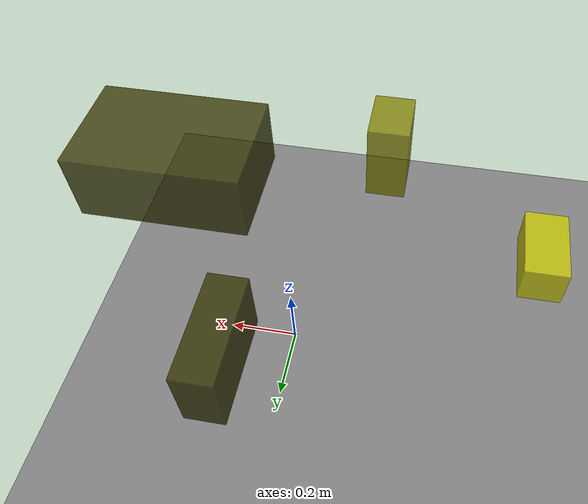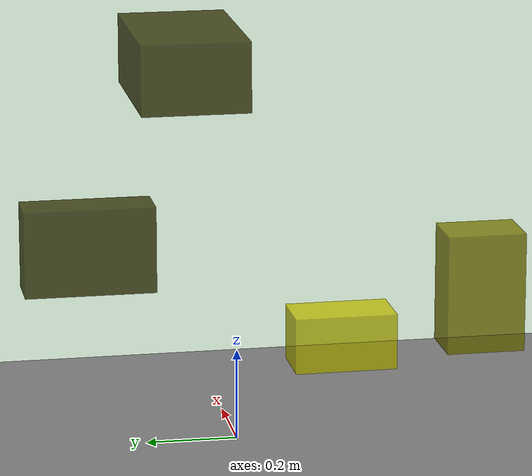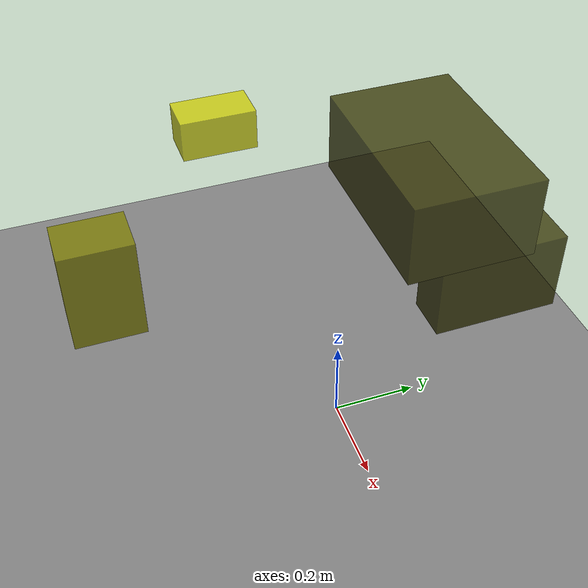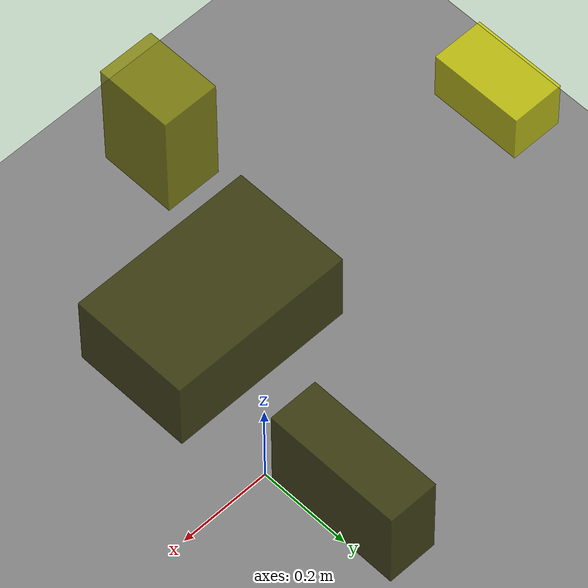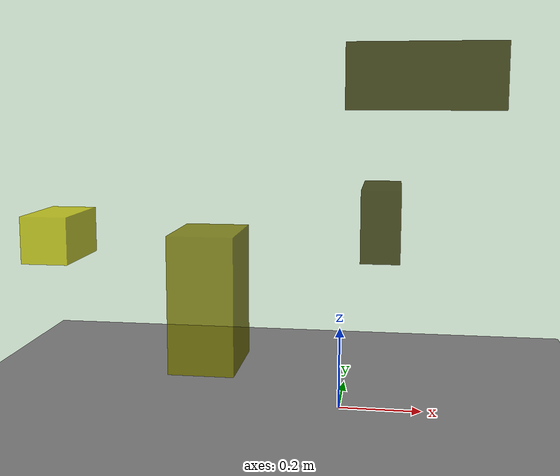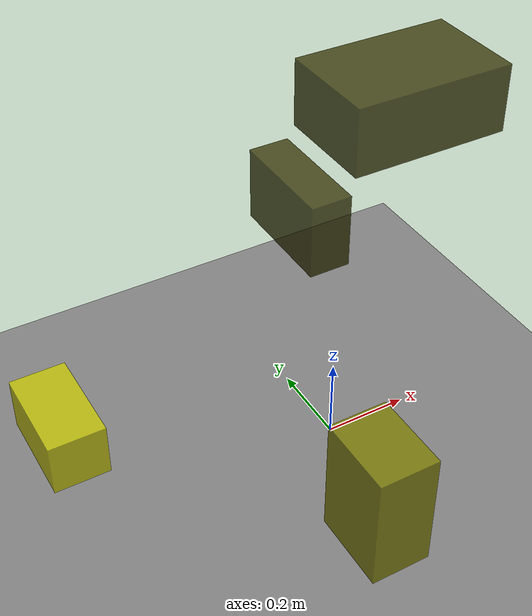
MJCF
<?xml version="1.0"?>
<mujoco model="obstacle_scene">
  <compiler angle="radian" coordinate="local"/>
  <option timestep="0.001" gravity="0 0 -9.81"/>

  <asset>
    <material name="obstacle_mat" rgba="0.8 0.8 0.0 0.8"/>
    <material name="ground_mat" rgba="0.5 0.5 0.5 1"/>
  </asset>

  <worldbody>
    <!-- Ground plane -->
    <geom name="ground" type="plane" size="3 3 0.1" material="ground_mat"/>

    <!-- Obstacles -->
    <body name="obstacle_0" pos="0.091028 0.311286 0.423726">
      <geom name="obs_0" type="box" size="0.051565 0.143086 0.095229" rgba="0.2 0.2 0.0 0.8"/>
    </body>
    <body name="obstacle_1" pos="-0.215895 -0.486101 0.381219">
      <geom name="obs_1" type="box" size="0.060933 0.083106 0.127617" rgba="0.5 0.5 0.0 0.8"/>
    </body>
    <body name="obstacle_2" pos="-0.667000 -0.091825 0.430025">
      <geom name="obs_2" type="box" size="0.055397 0.099846 0.054954" rgba="0.8 0.8 0.0 0.8"/>
    </body>
    <body name="obstacle_3" pos="0.190769 0.083328 0.803241">
      <geom name="obs_3" type="box" size="0.182400 0.118814 0.077435" rgba="0.2 0.2 0.0 0.8"/>
    </body>
  </worldbody>
</mujoco>
